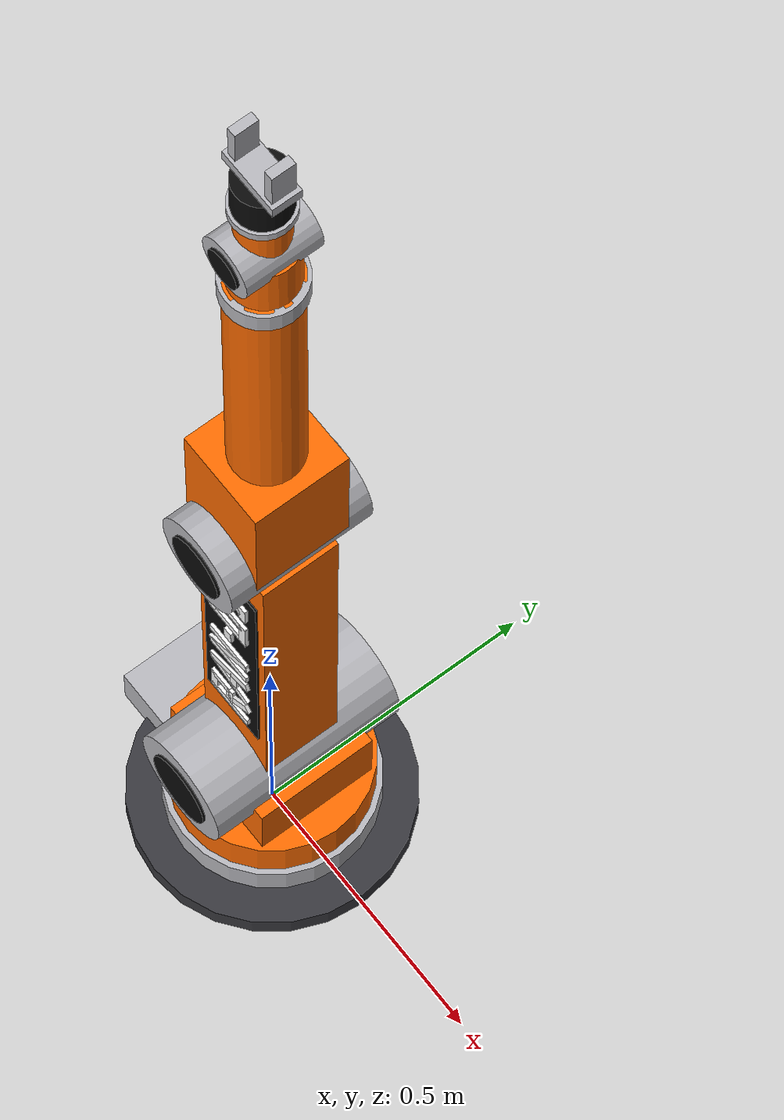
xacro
<?xml version="1.0"?>
<!-- RAN-01: a 6-DOF industrial-style robot arm built only from simple shapes -->
<robot name="ran_01" xmlns:xacro="http://www.ros.org/wiki/xacro">

  <xacro:property name="PI" value="3.14159"/>
  <xacro:property name="HALF_PI" value="1.5708"/>

  <material name="ran_orange"><color rgba="1.0 0.42 0.0 1"/></material>
  <material name="steel"><color rgba="0.72 0.72 0.74 1"/></material>
  <material name="dark"><color rgba="0.22 0.22 0.24 1"/></material>
  <material name="black"><color rgba="0.04 0.04 0.04 1"/></material>
  <material name="white"><color rgba="1 1 1 1"/></material>

  <!-- ================= helper macros ================= -->

  <!-- revolute joint placed z metres above the parent frame -->
  <xacro:macro name="rev_joint" params="name parent child z axis">
    <joint name="${name}" type="revolute">
      <parent link="${parent}"/>
      <child link="${child}"/>
      <origin xyz="0 0 ${z}" rpy="0 0 0"/>
      <axis xyz="${axis}"/>
      <limit lower="${-PI}" upper="${PI}" effort="10" velocity="1.0"/>
    </joint>
  </xacro:macro>

  <!-- motor hub: steel cylinder lying along y, with black end caps -->
  <xacro:macro name="joint_hub" params="radius width z">
    <visual>
      <origin xyz="0 0 ${z}" rpy="${HALF_PI} 0 0"/>
      <geometry><cylinder radius="${radius}" length="${width}"/></geometry>
      <material name="steel"/>
    </visual>
    <visual>
      <origin xyz="0 0 ${z}" rpy="${HALF_PI} 0 0"/>
      <geometry><cylinder radius="${radius*0.65}" length="${width+0.01}"/></geometry>
      <material name="black"/>
    </visual>
  </xacro:macro>

  <xacro:macro name="stroke" params="side zc u v slen a">
    <visual>
      <origin xyz="${side*v} ${side*0.077} ${zc+u}" rpy="0 ${side*a - HALF_PI} 0"/>
      <geometry><box size="${slen} 0.006 0.016"/></geometry>
      <material name="white"/>
    </visual>
  </xacro:macro>

  <xacro:macro name="glyph_R" params="side zc">
    <xacro:stroke side="${side}" zc="${zc}" u="-0.023"  v="0"       slen="0.09"   a="${HALF_PI}"/>
    <xacro:stroke side="${side}" zc="${zc}" u="-0.0025" v="0.038"   slen="0.055"  a="0"/>
    <xacro:stroke side="${side}" zc="${zc}" u="-0.0025" v="0"       slen="0.055"  a="0"/>
    <xacro:stroke side="${side}" zc="${zc}" u="0.019"   v="0.0225"  slen="0.045"  a="${HALF_PI}"/>
    <xacro:stroke side="${side}" zc="${zc}" u="0.013"   v="-0.0225" slen="0.0564" a="-0.9239"/>
  </xacro:macro>

  <xacro:macro name="glyph_A" params="side zc">
    <xacro:stroke side="${side}" zc="${zc}" u="-0.015" v="0"      slen="0.0949" a="1.2490"/>
    <xacro:stroke side="${side}" zc="${zc}" u="0.015"  v="0"      slen="0.0949" a="-1.2490"/>
    <xacro:stroke side="${side}" zc="${zc}" u="0"      v="-0.012" slen="0.038"  a="0"/>
  </xacro:macro>

  <xacro:macro name="glyph_N" params="side zc">
    <xacro:stroke side="${side}" zc="${zc}" u="-0.023" v="0" slen="0.09"   a="${HALF_PI}"/>
    <xacro:stroke side="${side}" zc="${zc}" u="0.023"  v="0" slen="0.09"   a="${HALF_PI}"/>
    <xacro:stroke side="${side}" zc="${zc}" u="0"      v="0" slen="0.1011" a="-1.0984"/>
  </xacro:macro>

  <xacro:macro name="glyph_dash" params="side zc">
    <xacro:stroke side="${side}" zc="${zc}" u="0" v="0" slen="0.03" a="0"/>
  </xacro:macro>

  <xacro:macro name="glyph_0" params="side zc">
    <xacro:stroke side="${side}" zc="${zc}" u="-0.023" v="0"      slen="0.09" a="${HALF_PI}"/>
    <xacro:stroke side="${side}" zc="${zc}" u="0.023"  v="0"      slen="0.09" a="${HALF_PI}"/>
    <xacro:stroke side="${side}" zc="${zc}" u="0"      v="0.038"  slen="0.06" a="0"/>
    <xacro:stroke side="${side}" zc="${zc}" u="0"      v="-0.038" slen="0.06" a="0"/>
  </xacro:macro>

  <xacro:macro name="glyph_1" params="side zc">
    <xacro:stroke side="${side}" zc="${zc}" u="0.004"  v="0"      slen="0.09"   a="${HALF_PI}"/>
    <xacro:stroke side="${side}" zc="${zc}" u="0.004"  v="-0.038" slen="0.04"   a="0"/>
    <xacro:stroke side="${side}" zc="${zc}" u="-0.005" v="0.036"  slen="0.0255" a="0.7854"/>
  </xacro:macro>

  <!-- black panel + "RAN-01" on one side of the upper arm -->
  <xacro:macro name="ran_logo" params="side">
    <visual>
      <origin xyz="0 ${side*0.072} 0.42" rpy="0 0 0"/>
      <geometry><box size="0.13 0.004 0.5"/></geometry>
      <material name="black"/>
    </visual>
    <xacro:glyph_R    side="${side}" zc="0.23"/>
    <xacro:glyph_A    side="${side}" zc="0.315"/>
    <xacro:glyph_N    side="${side}" zc="0.40"/>
    <xacro:glyph_dash side="${side}" zc="0.47"/>
    <xacro:glyph_0    side="${side}" zc="0.54"/>
    <xacro:glyph_1    side="${side}" zc="0.615"/>
  </xacro:macro>

  <!-- ================= links ================= -->

  <!-- base_link: floor plate, pedestal and cable box -->
  <link name="base_link">
    <visual>
      <origin xyz="0 0 0.02"/>
      <geometry><cylinder radius="0.24" length="0.04"/></geometry>
      <material name="dark"/>
    </visual>
    <visual>
      <origin xyz="0 0 0.07"/>
      <geometry><cylinder radius="0.18" length="0.06"/></geometry>
      <material name="steel"/>
    </visual>
    <visual>
      <origin xyz="-0.22 0 0.06"/>
      <geometry><box size="0.12 0.18 0.08"/></geometry>
      <material name="steel"/>
    </visual>
    <collision>
      <origin xyz="0 0 0.05"/>
      <geometry><cylinder radius="0.24" length="0.1"/></geometry>
    </collision>
  </link>

  <!-- link1: rotating carousel + shoulder housing + shoulder motor -->
  <link name="link1">
    <visual>
      <origin xyz="0 0 0.04"/>
      <geometry><cylinder radius="0.17" length="0.08"/></geometry>
      <material name="ran_orange"/>
    </visual>
    <visual>
      <origin xyz="0 0 0.14"/>
      <geometry><box size="0.24 0.22 0.12"/></geometry>
      <material name="ran_orange"/>
    </visual>
    <xacro:joint_hub radius="0.1" width="0.36" z="0.2"/>
    <collision>
      <origin xyz="0 0 0.12"/>
      <geometry><cylinder radius="0.17" length="0.24"/></geometry>
    </collision>
  </link>

  <!-- link2: upper arm with the RAN logo on both sides + elbow motor -->
  <link name="link2">
    <visual>
      <origin xyz="0 0 0.4"/>
      <geometry><box size="0.16 0.14 0.7"/></geometry>
      <material name="ran_orange"/>
    </visual>
    <xacro:joint_hub radius="0.085" width="0.26" z="0.8"/>
    <xacro:ran_logo side="1"/>
    <xacro:ran_logo side="-1"/>
    <collision>
      <origin xyz="0 0 0.4"/>
      <geometry><box size="0.16 0.14 0.8"/></geometry>
    </collision>
  </link>

  <!-- link3: forearm (elbow housing + tube + steel ring) -->
  <link name="link3">
    <visual>
      <origin xyz="0 0 0.12"/>
      <geometry><box size="0.17 0.17 0.24"/></geometry>
      <material name="ran_orange"/>
    </visual>
    <visual>
      <origin xyz="0 0 0.52"/>
      <geometry><cylinder radius="0.06" length="0.56"/></geometry>
      <material name="ran_orange"/>
    </visual>
    <visual>
      <origin xyz="0 0 0.78"/>
      <geometry><cylinder radius="0.066" length="0.04"/></geometry>
      <material name="steel"/>
    </visual>
    <collision>
      <origin xyz="0 0 0.4"/>
      <geometry><cylinder radius="0.085" length="0.8"/></geometry>
    </collision>
  </link>

  <!-- link4: wrist roll segment -->
  <link name="link4">
    <visual>
      <origin xyz="0 0 0.05"/>
      <geometry><cylinder radius="0.055" length="0.1"/></geometry>
      <material name="ran_orange"/>
    </visual>
    <collision>
      <origin xyz="0 0 0.05"/>
      <geometry><cylinder radius="0.055" length="0.1"/></geometry>
    </collision>
  </link>

  <!-- link5: wrist pitch motor + short segment -->
  <link name="link5">
    <xacro:joint_hub radius="0.05" width="0.13" z="0"/>
    <visual>
      <origin xyz="0 0 0.05"/>
      <geometry><cylinder radius="0.042" length="0.1"/></geometry>
      <material name="ran_orange"/>
    </visual>
    <collision>
      <origin xyz="0 0 0.05"/>
      <geometry><cylinder radius="0.05" length="0.1"/></geometry>
    </collision>
  </link>

  <!-- tool0: flange + tool body + simple two-finger gripper -->
  <link name="tool0">
    <visual>
      <origin xyz="0 0 0.008"/>
      <geometry><cylinder radius="0.05" length="0.016"/></geometry>
      <material name="steel"/>
    </visual>
    <visual>
      <origin xyz="0 0 0.051"/>
      <geometry><cylinder radius="0.045" length="0.07"/></geometry>
      <material name="black"/>
    </visual>
    <visual>
      <origin xyz="0 0 0.096"/>
      <geometry><box size="0.11 0.05 0.02"/></geometry>
      <material name="steel"/>
    </visual>
    <visual>
      <origin xyz="0.04 0 0.141"/>
      <geometry><box size="0.016 0.04 0.07"/></geometry>
      <material name="steel"/>
    </visual>
    <visual>
      <origin xyz="-0.04 0 0.141"/>
      <geometry><box size="0.016 0.04 0.07"/></geometry>
      <material name="steel"/>
    </visual>
    <collision>
      <origin xyz="0 0 0.088"/>
      <geometry><cylinder radius="0.055" length="0.176"/></geometry>
    </collision>
  </link>

  <!-- ================= joints ================= -->
  <!-- base yaw, shoulder, elbow, wrist roll, wrist pitch, wrist roll -->
  <xacro:rev_joint name="joint1" parent="base_link" child="link1" z="0.1" axis="0 0 1"/>
  <xacro:rev_joint name="joint2" parent="link1"     child="link2" z="0.2" axis="0 1 0"/>
  <xacro:rev_joint name="joint3" parent="link2"     child="link3" z="0.8" axis="0 1 0"/>
  <xacro:rev_joint name="joint4" parent="link3"     child="link4" z="0.8" axis="0 0 1"/>
  <xacro:rev_joint name="joint5" parent="link4"     child="link5" z="0.1" axis="0 1 0"/>
  <xacro:rev_joint name="joint6" parent="link5"     child="tool0" z="0.1" axis="0 0 1"/>

</robot>
